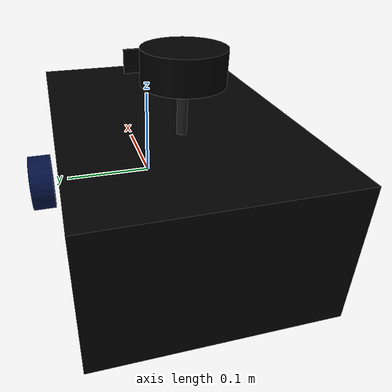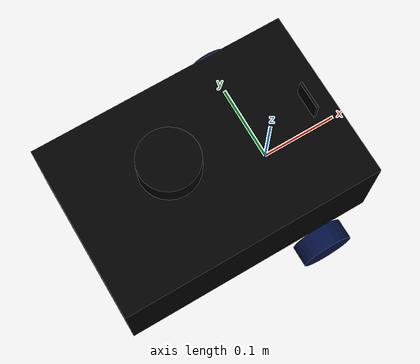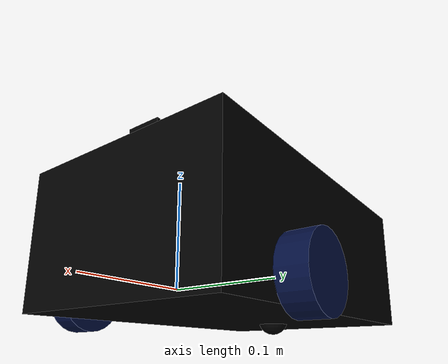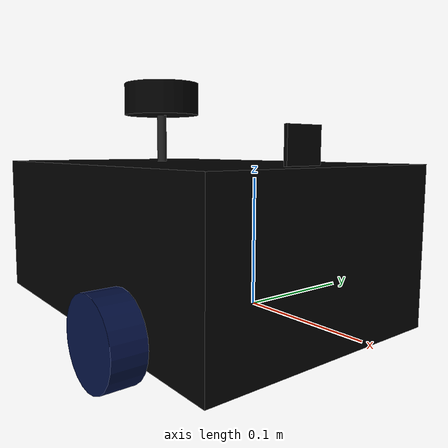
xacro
<?xml version="1.0"?>
<robot xmlns:xacro="http://www.ros.org/wiki/xacro" name="robot">

    <xacro:arg name="use_ros2_control" default="true"/>
    <xacro:arg name="sim_mode" default="false"/>

    <xacro:include filename="robot_core.xacro"/>

    <xacro:if value="$(arg use_ros2_control)">
        <xacro:include filename="ros2_control.xacro"/>
    </xacro:if>
    <xacro:unless value="$(arg use_ros2_control)">
        <xacro:include filename="gazebo_control.xacro"/>
    </xacro:unless>

    <xacro:include filename="lidar.xacro"/>

    <xacro:include filename="depth_camera.xacro"/>

</robot>

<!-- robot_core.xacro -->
<robot xmlns:xacro="http://www.ros.org/wiki/xacro">

    <xacro:include filename="inertial_macros.xacro"/>

    <xacro:property name="chassis_length" value="0.33"/>
    <xacro:property name="chassis_width" value="0.22"/>
    <xacro:property name="chassis_height" value="0.132"/>
    <xacro:property name="chassis_mass" value="1.0"/>
    <xacro:property name="wheel_radius" value="0.0325"/>
    <xacro:property name="wheel_thickness" value="0.026"/>
    <xacro:property name="wheel_mass" value="0.034"/>
    <xacro:property name="wheel_offset_x" value="${0.22 + wheel_radius}"/>
    <xacro:property name="wheel_offset_y" value="${chassis_width / 2 + wheel_thickness / 2 + 0.008}"/>
    <xacro:property name="wheel_offset_z" value="0.021"/>
    <xacro:property name="caster_wheel_radius" value="0.017"/>
    <xacro:property name="caster_wheel_mass" value="0.029"/>
    <xacro:property name="caster_wheel_offset_x" value="0.09"/>
    <xacro:property name="caster_wheel_offset_z" value="${wheel_offset_z - wheel_radius + caster_wheel_radius}"/>

    <material name="black">
        <color rgba="0 0 0 1"/>
    </material>
    <material name="blue">
        <color rgba="0.01 0.06 0.25 1"/>
    </material>

    <!-- BASE LINK -->

    <link name="base_link">
    </link>

    <!-- BASE_FOOTPRINT LINK -->

    <joint name="base_footprint_joint" type="fixed">
        <parent link="base_link"/>
        <child link="base_footprint"/>
        <origin xyz="0 0 0" rpy="0 0 0"/>
    </joint>

    <link name="base_footprint">
    </link>

    <!-- CHASSIS LINK -->

    <joint name="chassis_joint" type="fixed">
        <parent link="base_link"/>
        <child link="chassis"/>
        <origin xyz="${-wheel_offset_x} 0 ${-wheel_offset_z}"/>
    </joint>

    <link name="chassis">
        <visual>
            <origin xyz="${chassis_length/2} 0 ${chassis_height/2}"/>
            <geometry>
                <box size="${chassis_length} ${chassis_width} ${chassis_height}"/>
            </geometry>
            <material name="black"/>
        </visual>
        <collision>
            <origin xyz="${chassis_length/2} 0 ${chassis_height/2}"/>
            <geometry>
                <box size="${chassis_length} ${chassis_width} ${chassis_height}"/>
            </geometry>
        </collision>
        <xacro:inertial_box mass="${chassis_mass}" x="${chassis_length}" y="${chassis_width}" z="${chassis_height}">
            <origin xyz="${chassis_length/2} 0 ${chassis_height/2}" rpy="0 0 0"/>
        </xacro:inertial_box>
    </link>

    <gazebo reference="chassis">
        <material>Gazebo/Black</material>
    </gazebo>

    <!-- LEFT WHEEL LINK -->
    <joint name="left_wheel_joint" type="continuous">
        <parent link="base_link"/>
        <child link="left_wheel"/>
        <origin xyz="0 ${wheel_offset_y} 0" rpy="-${pi/2} 0 0"/>
        <axis xyz="0 0 1"/>
    </joint>

    <link name="left_wheel">
        <visual>
            <geometry>
                <cylinder radius="${wheel_radius}" length="${wheel_thickness}"/>
            </geometry>
            <material name="blue"/>
        </visual>
        <collision>
            <geometry>
                <sphere radius="${wheel_radius}"/>
            </geometry>
        </collision>
        <xacro:inertial_cylinder mass="${wheel_mass}" length="${wheel_thickness}" radius="${wheel_radius}">
            <origin xyz="0 0 0" rpy="0 0 0"/>
        </xacro:inertial_cylinder>
    </link>

    <gazebo reference="left_wheel">
        <material>Gazebo/Black</material>
    </gazebo>

    <!-- RIGHT WHEEL LINK -->
    <joint name="right_wheel_joint" type="continuous">
        <parent link="base_link"/>
        <child link="right_wheel"/>
        <origin xyz="0 -${wheel_offset_y} 0" rpy="${pi/2} 0 0"/>
        <axis xyz="0 0 -1"/>
    </joint>

    <link name="right_wheel">
        <visual>
            <geometry>
                <cylinder radius="${wheel_radius}" length="${wheel_thickness}"/>
            </geometry>
            <material name="blue"/>
        </visual>
        <collision>
            <geometry>
                <sphere radius="${wheel_radius}"/>
            </geometry>
        </collision>
        <xacro:inertial_cylinder mass="${wheel_mass}" length="${wheel_thickness}" radius="${wheel_radius}">
            <origin xyz="0 0 0" rpy="0 0 0"/>
        </xacro:inertial_cylinder>
    </link>

    <gazebo reference="right_wheel">
        <material>Gazebo/Black</material>
    </gazebo>

    <!-- CASTER WHEEL -->
    <joint name="caster_joint" type="fixed">
        <parent link="chassis"/>
        <child link="caster_wheel"/>
        <origin xyz="${caster_wheel_offset_x} 0 ${caster_wheel_offset_z}"/>
    </joint>

    <link name="caster_wheel">
        <visual>
            <geometry>
                <sphere radius="${caster_wheel_radius}"/>
            </geometry>
            <material name="black"/>
        </visual>
        <collision>
            <geometry>
                <sphere radius="${caster_wheel_radius}"/>
            </geometry>
        </collision>
        <xacro:inertial_sphere mass="${caster_wheel_mass}" radius="${caster_wheel_radius}">
            <origin xyz="0 0 0" rpy="0 0 0"/>
        </xacro:inertial_sphere>
    </link>

    <gazebo reference="caster_wheel">
        <material>Gazebo/Black</material>
        <mu1 value="0.001"/>  <!-- Coefficient of friction in the direction of relative motion -->
        <mu2 value="0.001"/>  <!-- Coefficient of friction perpendicular to the direction of relative motion -->
    </gazebo>

</robot>

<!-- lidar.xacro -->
<robot xmlns:xacro="http://www.ros.org/wiki/xacro"  name="robot">

    <joint name="laser_joint" type="fixed">
        <parent link="chassis"/>
        <child link="laser_frame"/>
        <origin xyz="0.12 0 0.192" rpy="0 0 0"/>
    </joint>

    <link name="laser_frame">
        <visual>
            <geometry>
                <cylinder radius="0.036" length="0.03"/>
            </geometry>
            <material name="black"/>
        </visual>
        <visual>
            <origin xyz="0 0 -0.0375"/>
            <geometry>
                <cylinder radius="0.0045" length="0.045"/>
            </geometry>
        </visual>
        <collision>
            <geometry>
                <cylinder radius="0.0045" length="0.045"/>
            </geometry>
        </collision>
        <xacro:inertial_cylinder mass="0.78" length="0.03" radius="0.036">
            <origin xyz="0 0 0" rpy="0 0 0"/>
        </xacro:inertial_cylinder>
    </link>

    <gazebo reference="laser_frame">
        <material>Gazebo/Black</material>

        <sensor name="laser" type="ray">
            <pose> 0 0 0 0 0 0 </pose>
            <visualize>false</visualize>
            <update_rate>10</update_rate>
            <ray>
                <scan>
                    <horizontal>
                        <samples>360</samples>
                        <min_angle>-3.14</min_angle>
                        <max_angle>3.14</max_angle>
                    </horizontal>
                </scan>
                <range>
                    <min>0.1</min>
                    <max>12</max>
                </range>
            </ray>
            <plugin name="laser_controller" filename="libgazebo_ros_ray_sensor.so">
                <ros>
                    <argument>~/out:=scan</argument>
                </ros>
                <output_type>sensor_msgs/LaserScan</output_type>
                <frame_name>laser_frame</frame_name>
            </plugin>
        </sensor>
    </gazebo>
</robot>

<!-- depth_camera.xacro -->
<robot xmlns:xacro="http://www.ros.org/wiki/xacro">

    <joint name="camera_joint" type="fixed">
        <parent link="chassis"/>
        <child link="camera_link"/>
        <origin xyz="0.3 0 0.1465" rpy="0 0 0"/>
    </joint>

    <link name="camera_link">
        <visual>
            <geometry>
                <box size="0.003 0.035 0.029"/>
            </geometry>
            <material name="black"/>
        </visual>
    </link>

    <joint name="camera_optical_joint" type="fixed">
        <parent link="camera_link"/>
        <child link="camera_link_optical"/>
        <origin xyz="0 0 0" rpy="${-pi/2} 0 ${-pi/2}"/>
    </joint>

    <link name="camera_link_optical"/>

    <gazebo reference="camera_link">
        <material>Gazebo/Black</material>

        <sensor name="camera" type="depth">
            <pose> 0 0 0 0 0 0</pose>
            <visualize>true</visualize>
            <update_rate>10</update_rate>
            <camera>
                <horizontal_fov>1.089</horizontal_fov>  <!-- determines how zoomed in or zoomed out the picture is -->
                <image>
                    <format>B8G8R8</format>
                    <width>640</width>
                    <height>480</height>
                </image>
                <clip>
                    <near>0.05</near>
                    <far>8.0</far>
                </clip>
            </camera>
            <plugin name='camera_controller' filename="libgazebo_ros_camera.so">
                <frame_name>camera_link_optical</frame_name>
                <min_depth>0.2</min_depth>
                <max_depth>100.0</max_depth>
            </plugin>
        </sensor>
    </gazebo>

</robot>
